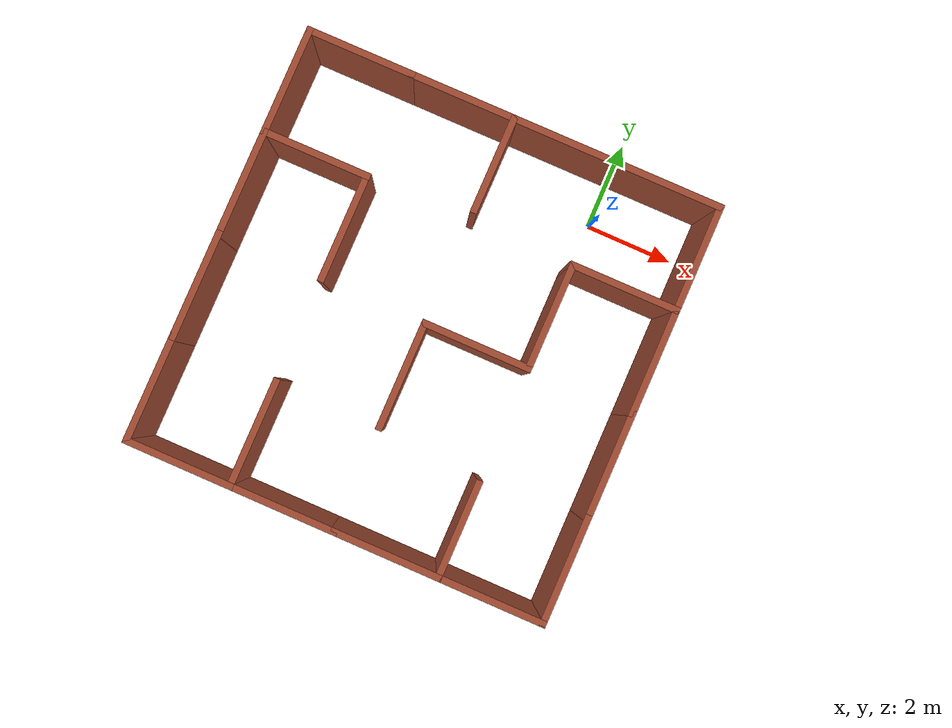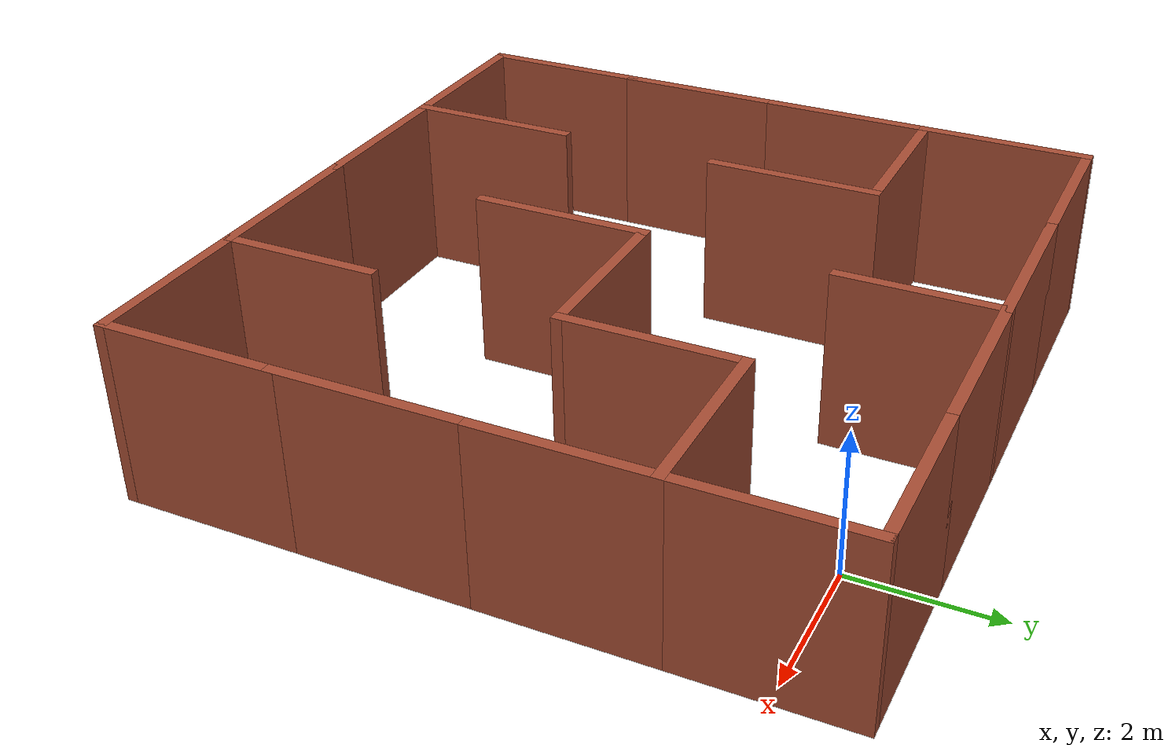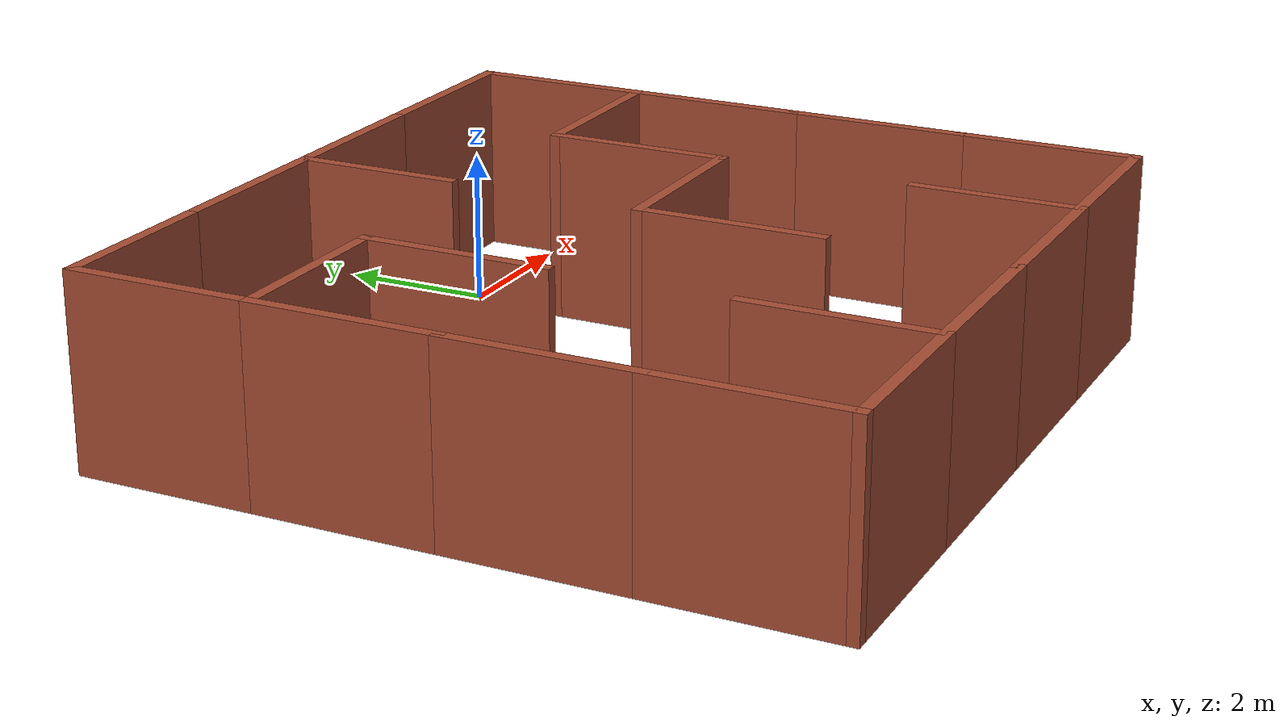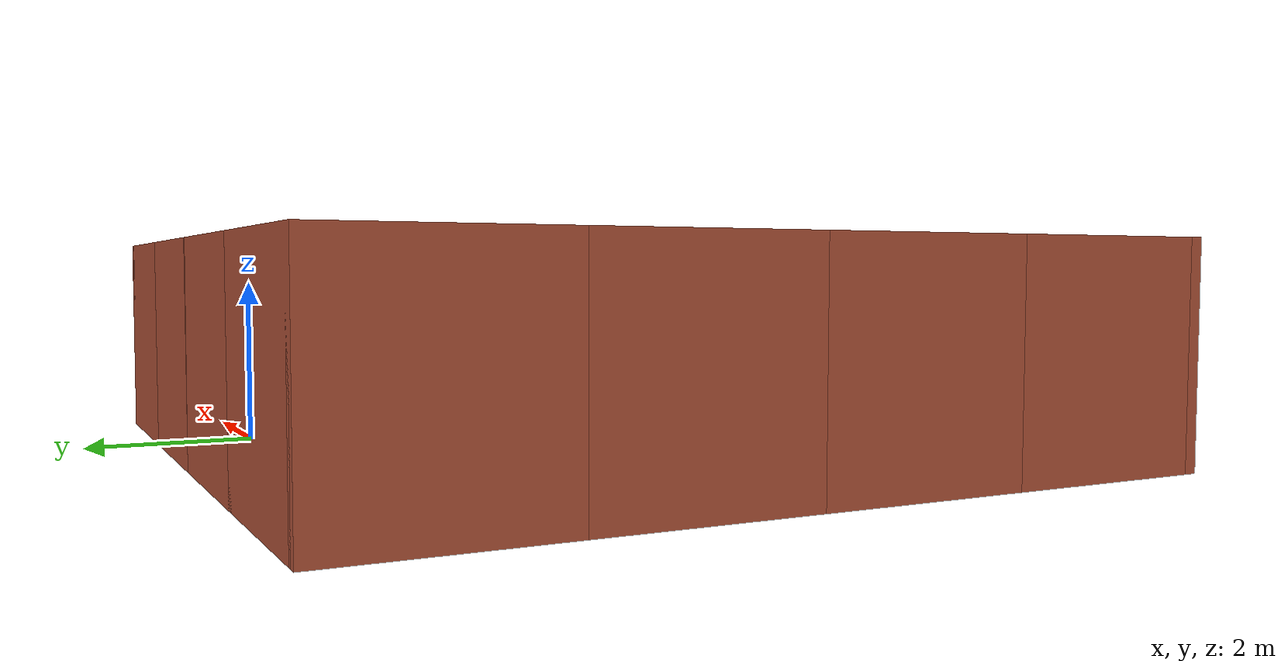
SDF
<?xml version='1.0'?>
<sdf version='1.7'>
  <model name='gazebo_laberynth'>
    <pose>-2.47585 -3.6358 0 0 -0 0</pose>
    <link name='Wall_16'>
      <collision name='Wall_16_Collision'>
        <geometry>
          <box>
            <size>2.5 0.15 2.5</size>
          </box>
        </geometry>
        <pose>0 0 1.25 0 -0 0</pose>
      </collision>
      <visual name='Wall_16_Visual'>
        <pose>0 0 1.25 0 -0 0</pose>
        <geometry>
          <box>
            <size>2.5 0.15 2.5</size>
          </box>
        </geometry>
        <material>
          <script>
            <uri>file://media/materials/scripts/gazebo.material</uri>
            <name>Gazebo/Bricks</name>
          </script>
          <ambient>1 1 1 1</ambient>
        </material>
        <meta>
          <layer>0</layer>
        </meta>
      </visual>
      <pose>3.525 4.7 0 0 -0 0</pose>
    </link>
    <link name='Wall_17'>
      <collision name='Wall_17_Collision'>
        <geometry>
          <box>
            <size>2.5 0.15 2.5</size>
          </box>
        </geometry>
        <pose>0 0 1.25 0 -0 0</pose>
      </collision>
      <visual name='Wall_17_Visual'>
        <pose>0 0 1.25 0 -0 0</pose>
        <geometry>
          <box>
            <size>2.5 0.15 2.5</size>
          </box>
        </geometry>
        <material>
          <script>
            <uri>file://media/materials/scripts/gazebo.material</uri>
            <name>Gazebo/Bricks</name>
          </script>
          <ambient>1 1 1 1</ambient>
        </material>
        <meta>
          <layer>0</layer>
        </meta>
      </visual>
      <pose>4.7 3.525 0 0 -0 -1.5708</pose>
    </link>
    <link name='Wall_25'>
      <collision name='Wall_25_Collision'>
        <geometry>
          <box>
            <size>2.5 0.15 2.5</size>
          </box>
        </geometry>
        <pose>0 0 1.25 0 -0 0</pose>
      </collision>
      <visual name='Wall_25_Visual'>
        <pose>0 0 1.25 0 -0 0</pose>
        <geometry>
          <box>
            <size>2.5 0.15 2.5</size>
          </box>
        </geometry>
        <material>
          <script>
            <uri>file://media/materials/scripts/gazebo.material</uri>
            <name>Gazebo/Bricks</name>
          </script>
          <ambient>1 1 1 1</ambient>
        </material>
        <meta>
          <layer>0</layer>
        </meta>
      </visual>
      <pose>1.175 -4.7 0 0 -0 3.14159</pose>
    </link>
    <link name='Wall_27'>
      <collision name='Wall_27_Collision'>
        <geometry>
          <box>
            <size>2.5 0.15 2.5</size>
          </box>
        </geometry>
        <pose>0 0 1.25 0 -0 0</pose>
      </collision>
      <visual name='Wall_27_Visual'>
        <pose>0 0 1.25 0 -0 0</pose>
        <geometry>
          <box>
            <size>2.5 0.15 2.5</size>
          </box>
        </geometry>
        <material>
          <script>
            <uri>file://media/materials/scripts/gazebo.material</uri>
            <name>Gazebo/Bricks</name>
          </script>
          <ambient>1 1 1 1</ambient>
        </material>
        <meta>
          <layer>0</layer>
        </meta>
      </visual>
      <pose>-3.525 -4.7 0 0 -0 3.14159</pose>
    </link>
    <link name='Wall_28'>
      <collision name='Wall_28_Collision'>
        <geometry>
          <box>
            <size>2.5 0.15 2.5</size>
          </box>
        </geometry>
        <pose>0 0 1.25 0 -0 0</pose>
      </collision>
      <visual name='Wall_28_Visual'>
        <pose>0 0 1.25 0 -0 0</pose>
        <geometry>
          <box>
            <size>2.5 0.15 2.5</size>
          </box>
        </geometry>
        <material>
          <script>
            <uri>file://media/materials/scripts/gazebo.material</uri>
            <name>Gazebo/Bricks</name>
          </script>
          <ambient>1 1 1 1</ambient>
        </material>
        <meta>
          <layer>0</layer>
        </meta>
      </visual>
      <pose>-4.7 -3.525 0 0 -0 1.5708</pose>
    </link>
    <link name='Wall_29'>
      <collision name='Wall_29_Collision'>
        <geometry>
          <box>
            <size>2.5 0.15 2.5</size>
          </box>
        </geometry>
        <pose>0 0 1.25 0 -0 0</pose>
      </collision>
      <visual name='Wall_29_Visual'>
        <pose>0 0 1.25 0 -0 0</pose>
        <geometry>
          <box>
            <size>2.5 0.15 2.5</size>
          </box>
        </geometry>
        <material>
          <script>
            <uri>file://media/materials/scripts/gazebo.material</uri>
            <name>Gazebo/Bricks</name>
          </script>
          <ambient>1 1 1 1</ambient>
        </material>
        <meta>
          <layer>0</layer>
        </meta>
      </visual>
      <pose>-4.7 -1.175 0 0 -0 1.5708</pose>
    </link>
    <link name='Wall_30'>
      <collision name='Wall_30_Collision'>
        <geometry>
          <box>
            <size>2.5 0.15 2.5</size>
          </box>
        </geometry>
        <pose>0 0 1.25 0 -0 0</pose>
      </collision>
      <visual name='Wall_30_Visual'>
        <pose>0 0 1.25 0 -0 0</pose>
        <geometry>
          <box>
            <size>2.5 0.15 2.5</size>
          </box>
        </geometry>
        <material>
          <script>
            <uri>file://media/materials/scripts/gazebo.material</uri>
            <name>Gazebo/Bricks</name>
          </script>
          <ambient>1 1 1 1</ambient>
        </material>
        <meta>
          <layer>0</layer>
        </meta>
      </visual>
      <pose>-4.7 1.175 0 0 -0 1.5708</pose>
    </link>
    <link name='Wall_31'>
      <collision name='Wall_31_Collision'>
        <geometry>
          <box>
            <size>2.5 0.15 2.5</size>
          </box>
        </geometry>
        <pose>0 0 1.25 0 -0 0</pose>
      </collision>
      <visual name='Wall_31_Visual'>
        <pose>0 0 1.25 0 -0 0</pose>
        <geometry>
          <box>
            <size>2.5 0.15 2.5</size>
          </box>
        </geometry>
        <material>
          <script>
            <uri>file://media/materials/scripts/gazebo.material</uri>
            <name>Gazebo/Bricks</name>
          </script>
          <ambient>1 1 1 1</ambient>
        </material>
        <meta>
          <layer>0</layer>
        </meta>
      </visual>
      <pose>-4.7 3.525 0 0 -0 1.5708</pose>
    </link>
    <link name='Wall_32'>
      <collision name='Wall_32_Collision'>
        <geometry>
          <box>
            <size>2.5 0.15 2.5</size>
          </box>
        </geometry>
        <pose>0 0 1.25 0 -0 0</pose>
      </collision>
      <visual name='Wall_32_Visual'>
        <pose>0 0 1.25 0 -0 0</pose>
        <geometry>
          <box>
            <size>2.5 0.15 2.5</size>
          </box>
        </geometry>
        <material>
          <script>
            <uri>file://media/materials/scripts/gazebo.material</uri>
            <name>Gazebo/Bricks</name>
          </script>
          <ambient>1 1 1 1</ambient>
        </material>
        <meta>
          <layer>0</layer>
        </meta>
      </visual>
      <pose>-3.525 4.7 0 0 -0 0</pose>
    </link>
    <link name='Wall_33'>
      <collision name='Wall_33_Collision'>
        <geometry>
          <box>
            <size>2.5 0.15 2.5</size>
          </box>
        </geometry>
        <pose>0 0 1.25 0 -0 0</pose>
      </collision>
      <visual name='Wall_33_Visual'>
        <pose>0 0 1.25 0 -0 0</pose>
        <geometry>
          <box>
            <size>2.5 0.15 2.5</size>
          </box>
        </geometry>
        <material>
          <script>
            <uri>file://media/materials/scripts/gazebo.material</uri>
            <name>Gazebo/Bricks</name>
          </script>
          <ambient>1 1 1 1</ambient>
        </material>
        <meta>
          <layer>0</layer>
        </meta>
      </visual>
      <pose>-1.175 4.7 0 0 -0 0</pose>
    </link>
    <link name='Wall_34'>
      <collision name='Wall_34_Collision'>
        <geometry>
          <box>
            <size>2.5 0.15 2.5</size>
          </box>
        </geometry>
        <pose>0 0 1.25 0 -0 0</pose>
      </collision>
      <visual name='Wall_34_Visual'>
        <pose>0 0 1.25 0 -0 0</pose>
        <geometry>
          <box>
            <size>2.5 0.15 2.5</size>
          </box>
        </geometry>
        <material>
          <script>
            <uri>file://media/materials/scripts/gazebo.material</uri>
            <name>Gazebo/Bricks</name>
          </script>
          <ambient>1 1 1 1</ambient>
        </material>
        <meta>
          <layer>0</layer>
        </meta>
      </visual>
      <pose>1.175 4.7 0 0 -0 0</pose>
    </link>
    <link name='Wall_41'>
      <collision name='Wall_41_Collision'>
        <geometry>
          <box>
            <size>2.5 0.15 2.5</size>
          </box>
        </geometry>
        <pose>0 0 1.25 0 -0 0</pose>
      </collision>
      <visual name='Wall_41_Visual'>
        <pose>0 0 1.25 0 -0 0</pose>
        <geometry>
          <box>
            <size>2.5 0.15 2.5</size>
          </box>
        </geometry>
        <material>
          <script>
            <uri>file://media/materials/scripts/gazebo.material</uri>
            <name>Gazebo/Bricks</name>
          </script>
          <ambient>1 1 1 1</ambient>
        </material>
        <meta>
          <layer>0</layer>
        </meta>
      </visual>
      <pose>3.525 2.35 0 0 -0 3.14159</pose>
    </link>
    <link name='Wall_42'>
      <collision name='Wall_42_Collision'>
        <geometry>
          <box>
            <size>2.5 0.15 2.5</size>
          </box>
        </geometry>
        <pose>0 0 1.25 0 -0 0</pose>
      </collision>
      <visual name='Wall_42_Visual'>
        <pose>0 0 1.25 0 -0 0</pose>
        <geometry>
          <box>
            <size>2.5 0.15 2.5</size>
          </box>
        </geometry>
        <material>
          <script>
            <uri>file://media/materials/scripts/gazebo.material</uri>
            <name>Gazebo/Bricks</name>
          </script>
          <ambient>1 1 1 1</ambient>
        </material>
        <meta>
          <layer>0</layer>
        </meta>
      </visual>
      <pose>2.35 1.175 0 0 -0 -1.5708</pose>
    </link>
    <link name='Wall_51'>
      <collision name='Wall_51_Collision'>
        <geometry>
          <box>
            <size>2.5 0.15 2.5</size>
          </box>
        </geometry>
        <pose>0 0 1.25 0 -0 0</pose>
      </collision>
      <visual name='Wall_51_Visual'>
        <pose>0 0 1.25 0 -0 0</pose>
        <geometry>
          <box>
            <size>2.5 0.15 2.5</size>
          </box>
        </geometry>
        <material>
          <script>
            <uri>file://media/materials/scripts/gazebo.material</uri>
            <name>Gazebo/Bricks</name>
          </script>
          <ambient>1 1 1 1</ambient>
        </material>
        <meta>
          <layer>0</layer>
        </meta>
      </visual>
      <pose>-2.35 -3.525 0 0 -0 1.5708</pose>
    </link>
    <link name='Wall_56'>
      <collision name='Wall_56_Collision'>
        <geometry>
          <box>
            <size>2.5 0.15 2.5</size>
          </box>
        </geometry>
        <pose>0 0 1.25 0 -0 0</pose>
      </collision>
      <visual name='Wall_56_Visual'>
        <pose>0 0 1.25 0 -0 0</pose>
        <geometry>
          <box>
            <size>2.5 0.15 2.5</size>
          </box>
        </geometry>
        <material>
          <script>
            <uri>file://media/materials/scripts/gazebo.material</uri>
            <name>Gazebo/Bricks</name>
          </script>
          <ambient>1 1 1 1</ambient>
        </material>
        <meta>
          <layer>0</layer>
        </meta>
      </visual>
      <pose>-3.525 2.35 0 0 -0 0</pose>
    </link>
    <link name='Wall_57'>
      <collision name='Wall_57_Collision'>
        <geometry>
          <box>
            <size>2.5 0.15 2.5</size>
          </box>
        </geometry>
        <pose>0 0 1.25 0 -0 0</pose>
      </collision>
      <visual name='Wall_57_Visual'>
        <pose>0 0 1.25 0 -0 0</pose>
        <geometry>
          <box>
            <size>2.5 0.15 2.5</size>
          </box>
        </geometry>
        <material>
          <script>
            <uri>file://media/materials/scripts/gazebo.material</uri>
            <name>Gazebo/Bricks</name>
          </script>
          <ambient>1 1 1 1</ambient>
        </material>
        <meta>
          <layer>0</layer>
        </meta>
      </visual>
      <pose>-2.35 1.175 0 0 -0 -1.5708</pose>
    </link>
    <link name='Wall_62'>
      <collision name='Wall_62_Collision'>
        <geometry>
          <box>
            <size>2.25 0.15 2.5</size>
          </box>
        </geometry>
        <pose>0 0 1.25 0 -0 0</pose>
      </collision>
      <visual name='Wall_62_Visual'>
        <pose>0 0 1.25 0 -0 0</pose>
        <geometry>
          <box>
            <size>2.25 0.15 2.5</size>
          </box>
        </geometry>
        <material>
          <script>
            <uri>file://media/materials/scripts/gazebo.material</uri>
            <name>Gazebo/Bricks</name>
          </script>
          <ambient>1 1 1 1</ambient>
        </material>
        <meta>
          <layer>0</layer>
        </meta>
      </visual>
      <pose>0 3.65 0 0 -0 1.5708</pose>
    </link>
    <link name='Wall_64'>
      <collision name='Wall_64_Collision'>
        <geometry>
          <box>
            <size>2.5 0.15 2.5</size>
          </box>
        </geometry>
        <pose>0 0 1.25 0 -0 0</pose>
      </collision>
      <visual name='Wall_64_Visual'>
        <pose>0 0 1.25 0 -0 0</pose>
        <geometry>
          <box>
            <size>2.5 0.15 2.5</size>
          </box>
        </geometry>
        <material>
          <script>
            <uri>file://media/materials/scripts/gazebo.material</uri>
            <name>Gazebo/Bricks</name>
          </script>
          <ambient>1 1 1 1</ambient>
        </material>
        <meta>
          <layer>0</layer>
        </meta>
      </visual>
      <pose>1.175 0 0 0 -0 3.14159</pose>
    </link>
    <link name='Wall_65'>
      <collision name='Wall_65_Collision'>
        <geometry>
          <box>
            <size>2.5 0.15 2.5</size>
          </box>
        </geometry>
        <pose>0 0 1.25 0 -0 0</pose>
      </collision>
      <visual name='Wall_65_Visual'>
        <pose>0 0 1.25 0 -0 0</pose>
        <geometry>
          <box>
            <size>2.5 0.15 2.5</size>
          </box>
        </geometry>
        <material>
          <script>
            <uri>file://media/materials/scripts/gazebo.material</uri>
            <name>Gazebo/Bricks</name>
          </script>
          <ambient>1 1 1 1</ambient>
        </material>
        <meta>
          <layer>0</layer>
        </meta>
      </visual>
      <pose>0 -1.175 0 0 -0 -1.5708</pose>
    </link>
    <link name='Wall_67'>
      <collision name='Wall_67_Collision'>
        <geometry>
          <box>
            <size>2.5 0.15 2.5</size>
          </box>
        </geometry>
        <pose>0 0 1.25 0 -0 0</pose>
      </collision>
      <visual name='Wall_67_Visual'>
        <pose>0 0 1.25 0 -0 0</pose>
        <geometry>
          <box>
            <size>2.5 0.15 2.5</size>
          </box>
        </geometry>
        <material>
          <script>
            <uri>file://media/materials/scripts/gazebo.material</uri>
            <name>Gazebo/Bricks</name>
          </script>
          <ambient>1 1 1 1</ambient>
        </material>
        <meta>
          <layer>0</layer>
        </meta>
      </visual>
      <pose>-1.175 -4.7 0 0 -0 0</pose>
    </link>
    <link name='Wall_71'>
      <collision name='Wall_71_Collision'>
        <geometry>
          <box>
            <size>2.5 0.15 2.5</size>
          </box>
        </geometry>
        <pose>0 0 1.25 0 -0 0</pose>
      </collision>
      <visual name='Wall_71_Visual'>
        <pose>0 0 1.25 0 -0 0</pose>
        <geometry>
          <box>
            <size>2.5 0.15 2.5</size>
          </box>
        </geometry>
        <material>
          <script>
            <uri>file://media/materials/scripts/gazebo.material</uri>
            <name>Gazebo/Bricks</name>
          </script>
          <ambient>1 1 1 1</ambient>
        </material>
        <meta>
          <layer>0</layer>
        </meta>
      </visual>
      <pose>4.7 1.175 0 0 -0 -1.5708</pose>
    </link>
    <link name='Wall_72'>
      <collision name='Wall_72_Collision'>
        <geometry>
          <box>
            <size>2.5 0.15 2.5</size>
          </box>
        </geometry>
        <pose>0 0 1.25 0 -0 0</pose>
      </collision>
      <visual name='Wall_72_Visual'>
        <pose>0 0 1.25 0 -0 0</pose>
        <geometry>
          <box>
            <size>2.5 0.15 2.5</size>
          </box>
        </geometry>
        <material>
          <script>
            <uri>file://media/materials/scripts/gazebo.material</uri>
            <name>Gazebo/Bricks</name>
          </script>
          <ambient>1 1 1 1</ambient>
        </material>
        <meta>
          <layer>0</layer>
        </meta>
      </visual>
      <pose>4.7 -1.175 0 0 -0 -1.5708</pose>
    </link>
    <link name='Wall_73'>
      <collision name='Wall_73_Collision'>
        <geometry>
          <box>
            <size>2.5 0.15 2.5</size>
          </box>
        </geometry>
        <pose>0 0 1.25 0 -0 0</pose>
      </collision>
      <visual name='Wall_73_Visual'>
        <pose>0 0 1.25 0 -0 0</pose>
        <geometry>
          <box>
            <size>2.5 0.15 2.5</size>
          </box>
        </geometry>
        <material>
          <script>
            <uri>file://media/materials/scripts/gazebo.material</uri>
            <name>Gazebo/Bricks</name>
          </script>
          <ambient>1 1 1 1</ambient>
        </material>
        <meta>
          <layer>0</layer>
        </meta>
      </visual>
      <pose>4.7 -3.525 0 0 -0 -1.5708</pose>
    </link>
    <link name='Wall_74'>
      <collision name='Wall_74_Collision'>
        <geometry>
          <box>
            <size>2.5 0.15 2.5</size>
          </box>
        </geometry>
        <pose>0 0 1.25 0 -0 0</pose>
      </collision>
      <visual name='Wall_74_Visual'>
        <pose>0 0 1.25 0 -0 0</pose>
        <geometry>
          <box>
            <size>2.5 0.15 2.5</size>
          </box>
        </geometry>
        <material>
          <script>
            <uri>file://media/materials/scripts/gazebo.material</uri>
            <name>Gazebo/Bricks</name>
          </script>
          <ambient>1 1 1 1</ambient>
        </material>
        <meta>
          <layer>0</layer>
        </meta>
      </visual>
      <pose>3.525 -4.7 0 0 -0 3.14159</pose>
    </link>
    <link name='Wall_75'>
      <collision name='Wall_75_Collision'>
        <geometry>
          <box>
            <size>2.25 0.15 2.5</size>
          </box>
        </geometry>
        <pose>0 0 1.25 0 -0 0</pose>
      </collision>
      <visual name='Wall_75_Visual'>
        <pose>0 0 1.25 0 -0 0</pose>
        <geometry>
          <box>
            <size>2.25 0.15 2.5</size>
          </box>
        </geometry>
        <material>
          <script>
            <uri>file://media/materials/scripts/gazebo.material</uri>
            <name>Gazebo/Bricks</name>
          </script>
          <ambient>1 1 1 1</ambient>
        </material>
        <meta>
          <layer>0</layer>
        </meta>
      </visual>
      <pose>2.35 -3.65 0 0 -0 1.5708</pose>
    </link>
    <static>1</static>
  </model>
</sdf>
